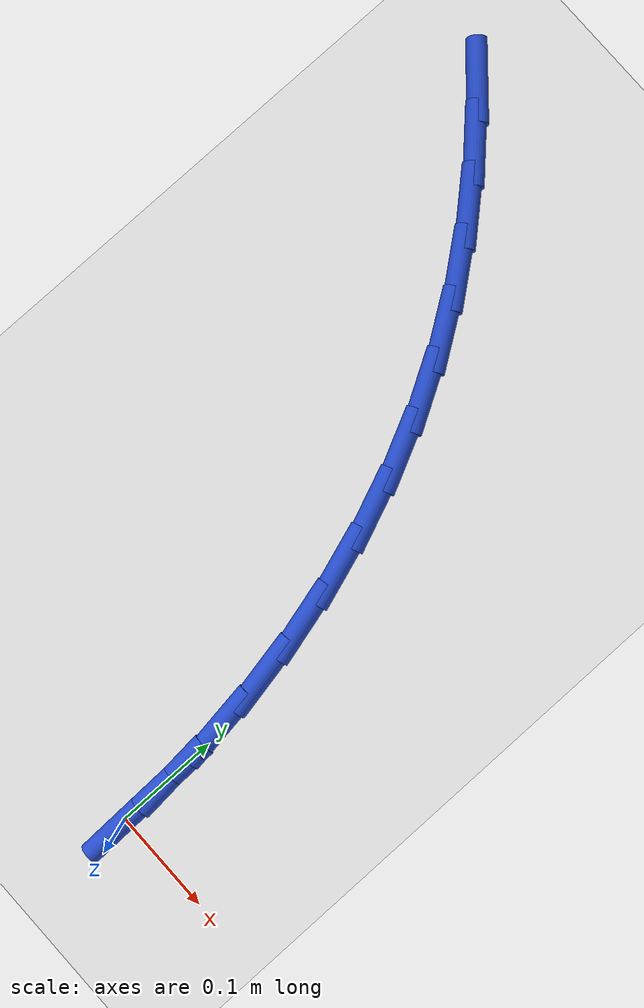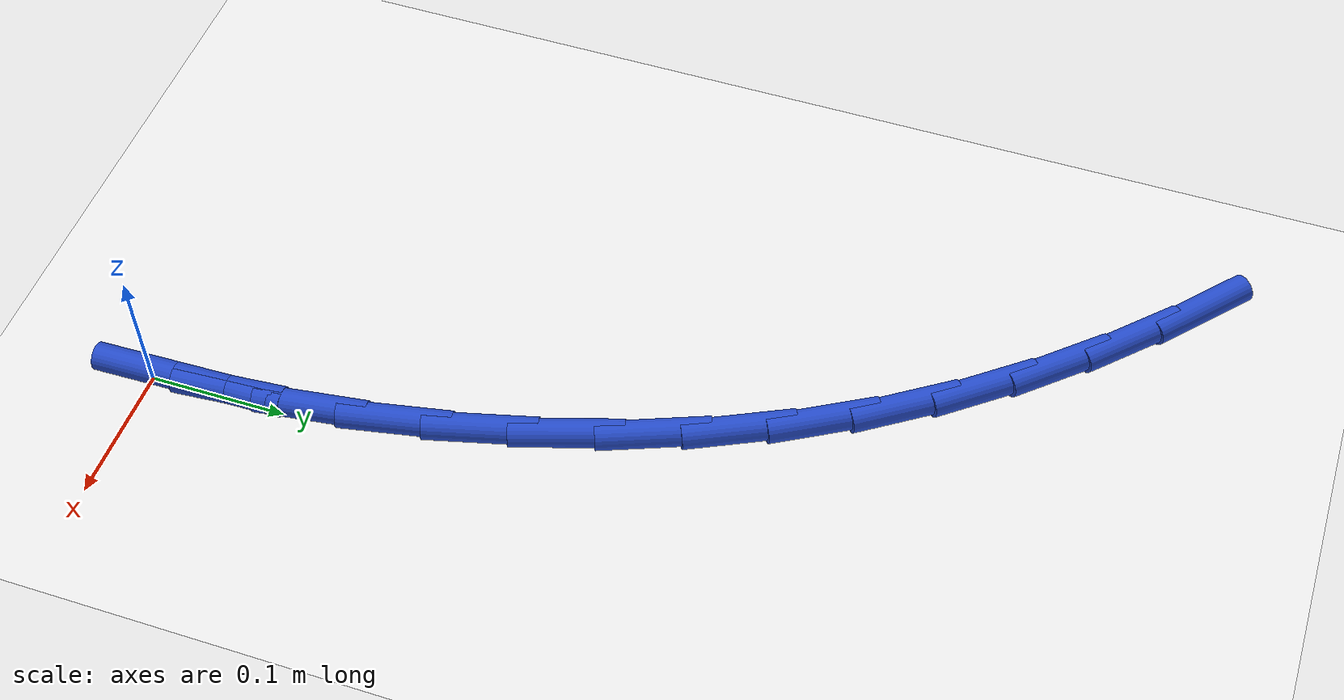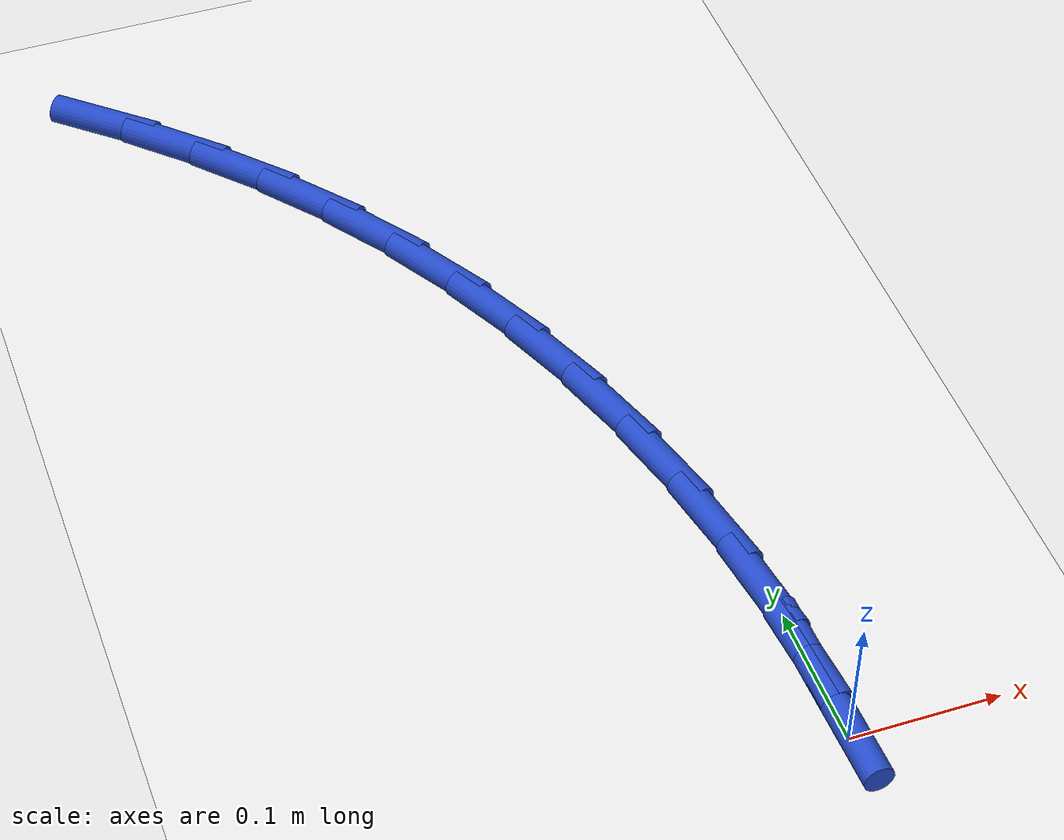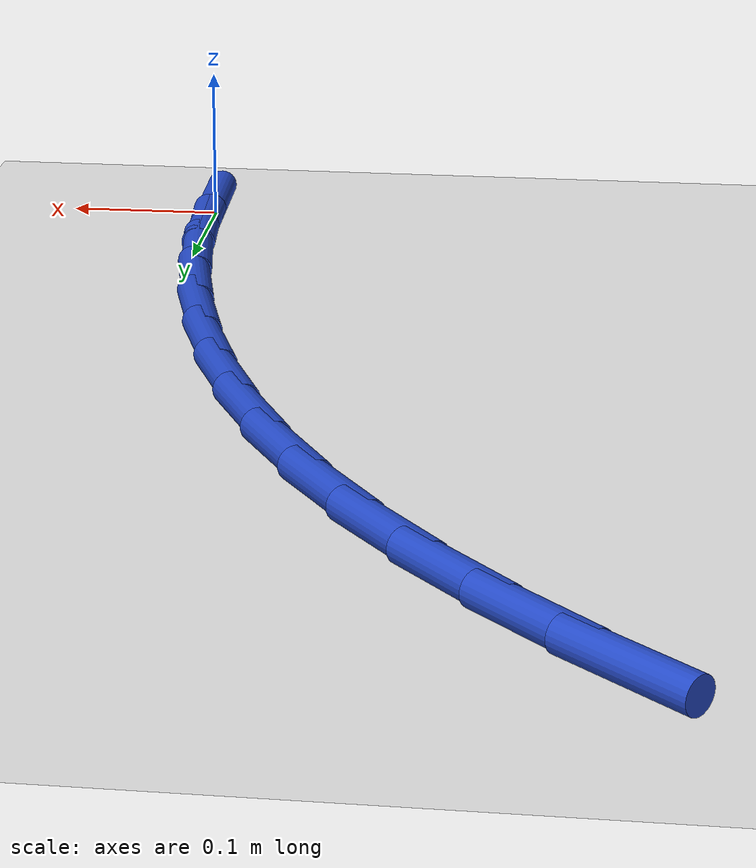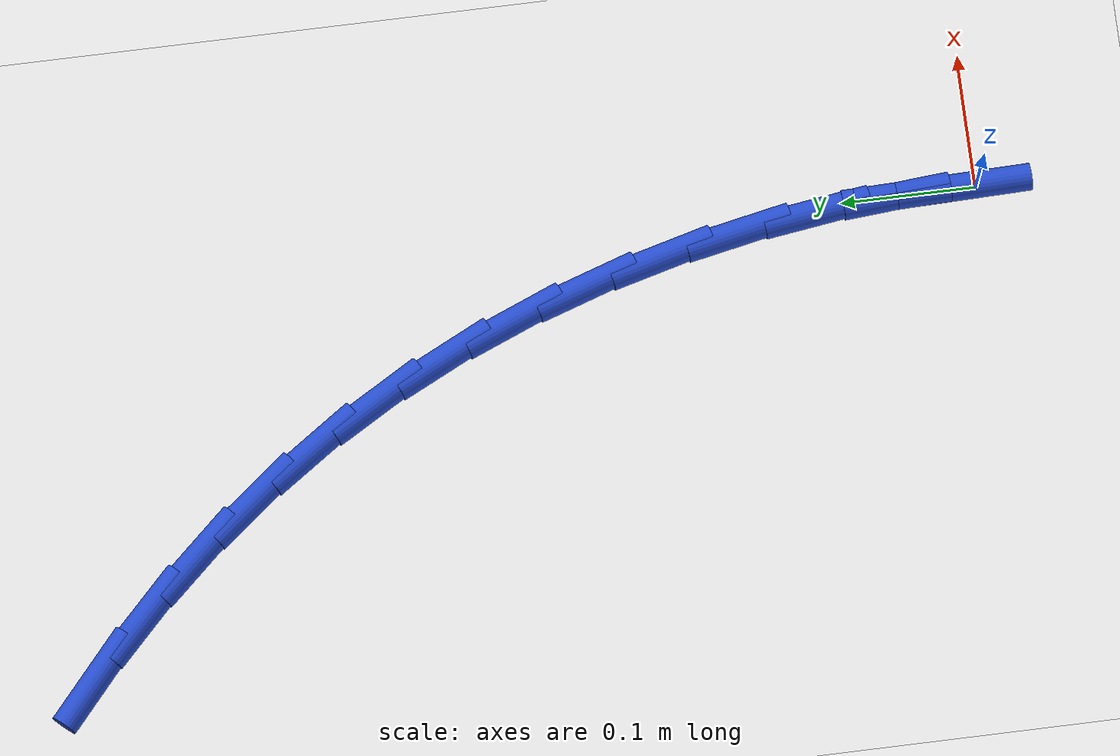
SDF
<sdf version="1.6">
 <world name="default">
  <model name="ground_plane">
   <static>1</static>
   <link name="link">
    <collision name="collision">
     <geometry><plane><normal>0 0 1</normal><size>100 100</size></plane></geometry>
     <surface><friction><ode><mu>100</mu><mu2>50</mu2></ode></friction></surface>
    </collision>
    <visual name="visual">
     <cast_shadows>0</cast_shadows>
     <geometry><plane><normal>0 0 1</normal><size>100 100</size></plane></geometry>
     <material>
      <script><uri>file://media/materials/scripts/gazebo.material</uri><name>Gazebo/WhiteGlow</name></script>
     </material>
    </visual>
   </link>
  </model>
  <model name="line">
   <link name="link_1">
    <pose>-0.0015113973975501406 0.05961498914838776 0.01 0 1.57 -1.4891272117992227</pose>
    <collision name="collision">
     <geometry><cylinder><radius>0.01</radius><length>0.08</length></cylinder></geometry>
    </collision>
    <visual name="visual">
     <material>
      <script><name>Gazebo/Blue</name><uri>file://media/materials/scripts/gazebo.material</uri></script>
     </material>
     <geometry><cylinder><radius>0.01</radius><length>0.08</length></cylinder></geometry>
    </visual>
   </link>
   <link name="link_2">
    <pose>-0.0063724496699167354 0.11900390228423383 0.01 0 1.57 -1.4317367043255131</pose>
    <collision name="collision">
     <geometry><cylinder><radius>0.01</radius><length>0.08</length></cylinder></geometry>
    </collision>
    <visual name="visual">
     <material>
      <script><name>Gazebo/Blue</name><uri>file://media/materials/scripts/gazebo.material</uri></script>
     </material>
     <geometry><cylinder><radius>0.01</radius><length>0.08</length></cylinder></geometry>
    </visual>
   </link>
   <link name="link_3">
    <pose>-0.01461289206709141 0.17787977807507643 0.01 0 1.57 -1.3728314118351437</pose>
    <collision name="collision">
     <geometry><cylinder><radius>0.01</radius><length>0.08</length></cylinder></geometry>
    </collision>
    <visual name="visual">
     <material>
      <script><name>Gazebo/Blue</name><uri>file://media/materials/scripts/gazebo.material</uri></script>
     </material>
     <geometry><cylinder><radius>0.01</radius><length>0.08</length></cylinder></geometry>
    </visual>
   </link>
   <link name="link_4">
    <pose>-0.026262459839065784 0.23595565518845413 0.01 0 1.57 -1.311974161279168</pose>
    <collision name="collision">
     <geometry><cylinder><radius>0.01</radius><length>0.08</length></cylinder></geometry>
    </collision>
    <visual name="visual">
     <material>
      <script><name>Gazebo/Blue</name><uri>file://media/materials/scripts/gazebo.material</uri></script>
     </material>
     <geometry><cylinder><radius>0.01</radius><length>0.08</length></cylinder></geometry>
    </visual>
   </link>
   <link name="link_5">
    <pose>-0.04135088823583154 0.2929445722919055 0.01 0 1.57 -1.2487433104594519</pose>
    <collision name="collision">
     <geometry><cylinder><radius>0.01</radius><length>0.08</length></cylinder></geometry>
    </collision>
    <visual name="visual">
     <material>
      <script><name>Gazebo/Blue</name><uri>file://media/materials/scripts/gazebo.material</uri></script>
     </material>
     <geometry><cylinder><radius>0.01</radius><length>0.08</length></cylinder></geometry>
    </visual>
   </link>
   <link name="link_6">
    <pose>-0.05990791250738031 0.34855956805296906 0.01 0 1.57 -1.1827440843083605</pose>
    <collision name="collision">
     <geometry><cylinder><radius>0.01</radius><length>0.08</length></cylinder></geometry>
    </collision>
    <visual name="visual">
     <material>
      <script><name>Gazebo/Blue</name><uri>file://media/materials/scripts/gazebo.material</uri></script>
     </material>
     <geometry><cylinder><radius>0.01</radius><length>0.08</length></cylinder></geometry>
    </visual>
   </link>
   <link name="link_7">
    <pose>-0.0819632679037037 0.4025136811391832 0.01 0 1.57 -1.1136258780248254</pose>
    <collision name="collision">
     <geometry><cylinder><radius>0.01</radius><length>0.08</length></cylinder></geometry>
    </collision>
    <visual name="visual">
     <material>
      <script><name>Gazebo/Blue</name><uri>file://media/materials/scripts/gazebo.material</uri></script>
     </material>
     <geometry><cylinder><radius>0.01</radius><length>0.08</length></cylinder></geometry>
    </visual>
   </link>
   <link name="link_8">
    <pose>-0.10754668967479336 0.4545199502180864 0.01 0 1.57 -1.0411072555794443</pose>
    <collision name="collision">
     <geometry><cylinder><radius>0.01</radius><length>0.08</length></cylinder></geometry>
    </collision>
    <visual name="visual">
     <material>
      <script><name>Gazebo/Blue</name><uri>file://media/materials/scripts/gazebo.material</uri></script>
     </material>
     <geometry><cylinder><radius>0.01</radius><length>0.08</length></cylinder></geometry>
    </visual>
   </link>
   <link name="link_9">
    <pose>-0.13668787837361773 0.5042914577247749 0.01 0 1.57 -0.9667481341316371</pose>
    <collision name="collision">
     <geometry><cylinder><radius>0.01</radius><length>0.08</length></cylinder></geometry>
    </collision>
    <visual name="visual">
     <material>
      <script><name>Gazebo/Blue</name><uri>file://media/materials/scripts/gazebo.material</uri></script>
     </material>
     <geometry><cylinder><radius>0.01</radius><length>0.08</length></cylinder></geometry>
    </visual>
   </link>
   <link name="link_10">
    <pose>-0.16935145791051645 0.5516233751449464 0.01 0 1.57 -0.896077318207147</pose>
    <collision name="collision">
     <geometry><cylinder><radius>0.01</radius><length>0.08</length></cylinder></geometry>
    </collision>
    <visual name="visual">
     <material>
      <script><name>Gazebo/Blue</name><uri>file://media/materials/scripts/gazebo.material</uri></script>
     </material>
     <geometry><cylinder><radius>0.01</radius><length>0.08</length></cylinder></geometry>
    </visual>
   </link>
   <link name="link_11">
    <pose>-0.2053018608852051 0.5965633995090126 0.01 0 1.57 -0.8304730070015126</pose>
    <collision name="collision">
     <geometry><cylinder><radius>0.01</radius><length>0.08</length></cylinder></geometry>
    </collision>
    <visual name="visual">
     <material>
      <script><name>Gazebo/Blue</name><uri>file://media/materials/scripts/gazebo.material</uri></script>
     </material>
     <geometry><cylinder><radius>0.01</radius><length>0.08</length></cylinder></geometry>
    </visual>
   </link>
   <link name="link_12">
    <pose>-0.24426515020689532 0.6392076281848661 0.01 0 1.57 -0.7700888581285973</pose>
    <collision name="collision">
     <geometry><cylinder><radius>0.01</radius><length>0.08</length></cylinder></geometry>
    </collision>
    <visual name="visual">
     <material>
      <script><name>Gazebo/Blue</name><uri>file://media/materials/scripts/gazebo.material</uri></script>
     </material>
     <geometry><cylinder><radius>0.01</radius><length>0.08</length></cylinder></geometry>
    </visual>
   </link>
   <link name="link_13">
    <pose>-0.2859673887847986 0.6796521585403996 0.01 0 1.57 -0.7149001121007694</pose>
    <collision name="collision">
     <geometry><cylinder><radius>0.01</radius><length>0.08</length></cylinder></geometry>
    </collision>
    <visual name="visual">
     <material>
      <script><name>Gazebo/Blue</name><uri>file://media/materials/scripts/gazebo.material</uri></script>
     </material>
     <geometry><cylinder><radius>0.01</radius><length>0.08</length></cylinder></geometry>
    </visual>
   </link>
   <link name="link_120">
    <pose>2.42861286636753e-17 6.938893903907228e-17 0.01 0 1.57 -1.545553356677426</pose>
    <collision name="collision">
     <geometry><cylinder><radius>0.01</radius><length>0.08</length></cylinder></geometry>
    </collision>
    <visual name="visual">
     <material>
      <script><name>Gazebo/Blue</name><uri>file://media/materials/scripts/gazebo.material</uri></script>
     </material>
     <geometry><cylinder><radius>0.01</radius><length>0.08</length></cylinder></geometry>
    </visual>
   </link>
   <link name="link_121">
    <pose>-0.0015053516028874538 0.05962182111835619 0.01 0 1.57 -1.5455533566774262</pose>
    <collision name="collision">
     <geometry><cylinder><radius>0.01</radius><length>0.08</length></cylinder></geometry>
    </collision>
    <visual name="visual">
     <material>
      <script><name>Gazebo/Blue</name><uri>file://media/materials/scripts/gazebo.material</uri></script>
     </material>
     <geometry><cylinder><radius>0.01</radius><length>0.08</length></cylinder></geometry>
    </visual>
   </link>
  </model>
 </world>
</sdf>
